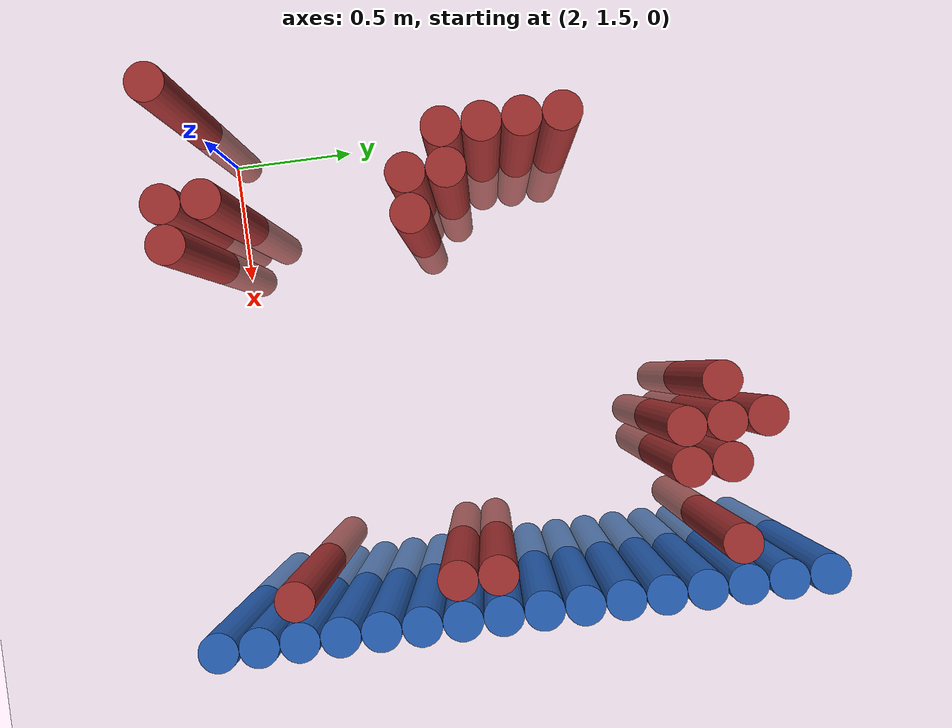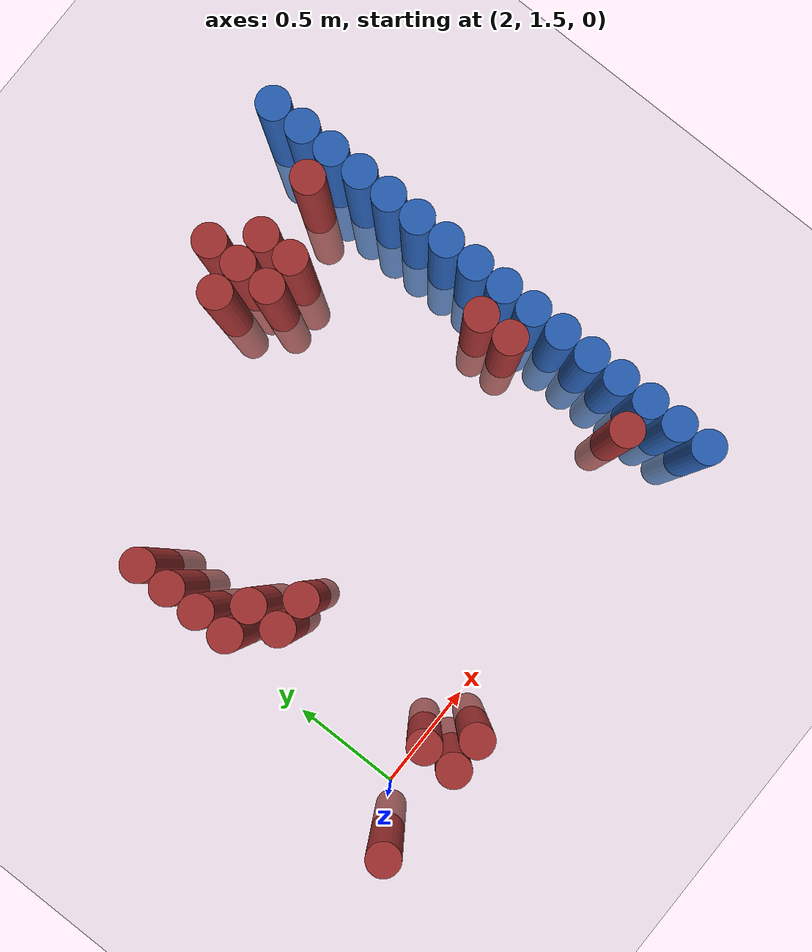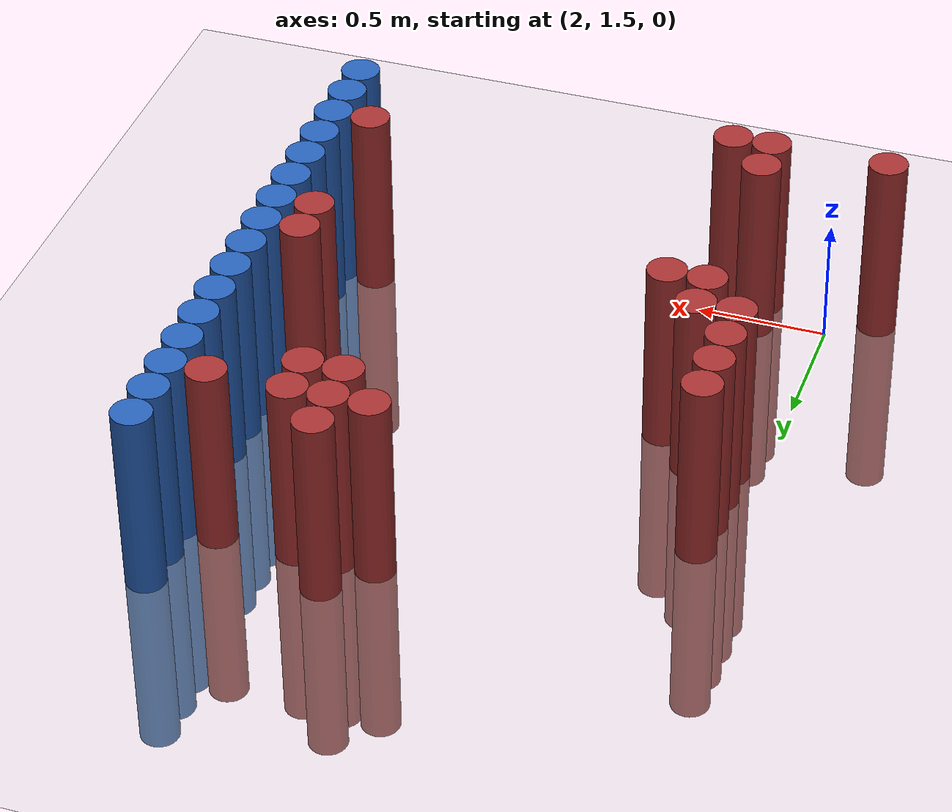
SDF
<sdf version="1.6">
 <world name="default">
  <model name="ground_plane">
   <static>1</static>
   <link name="link">
    <collision name="collision">
     <geometry><plane><normal>0 0 1</normal><size>100 100</size></plane></geometry>
     <surface><friction><ode><mu>100</mu><mu2>50</mu2></ode></friction></surface>
    </collision>
    <visual name="visual">
     <cast_shadows>0</cast_shadows>
     <geometry><plane><normal>0 0 1</normal><size>100 100</size></plane></geometry>
     <material>
      <script><uri>file://media/materials/scripts/gazebo.material</uri><name>Gazebo/Grey</name></script>
     </material>
    </visual>
   </link>
  </model>
  <model name="unit_cylinder_134">
   <static>1</static>
   <pose>3.925000 1.525000 0.000000 0.000000 0.000000 0.000000</pose>
   <link name="link">
    <inertial>
     <mass>1</mass>
     <inertia><ixx>0.145833</ixx><ixy>0</ixy><ixz>0</ixz><iyy>0.145833</iyy><iyz>0</iyz><izz>0.125</izz></inertia>
    </inertial>
    <collision name="collision">
     <geometry><cylinder><radius>0.075000</radius><length>1.5</length></cylinder></geometry>
    </collision>
    <visual name="visual">
     <geometry><cylinder><radius>0.075000</radius><length>1.5</length></cylinder></geometry>
     <material>
      <ambient>0.152000 0.379000 0.720000 1</ambient>
      <diffuse>0.152000 0.379000 0.720000 1</diffuse>
     </material>
     <material>
      <script><name>Gazebo/Grey</name><uri>file://media/materials/scripts/gazebo.material</uri></script>
     </material>
    </visual>
   </link>
  </model>
  <model name="unit_cylinder_136">
   <static>1</static>
   <pose>3.925000 1.675000 0.000000 0.000000 0.000000 0.000000</pose>
   <link name="link">
    <inertial>
     <mass>1</mass>
     <inertia><ixx>0.145833</ixx><ixy>0</ixy><ixz>0</ixz><iyy>0.145833</iyy><iyz>0</iyz><izz>0.125</izz></inertia>
    </inertial>
    <collision name="collision">
     <geometry><cylinder><radius>0.075000</radius><length>1.5</length></cylinder></geometry>
    </collision>
    <visual name="visual">
     <geometry><cylinder><radius>0.075000</radius><length>1.5</length></cylinder></geometry>
     <material>
      <ambient>0.152000 0.379000 0.720000 1</ambient>
      <diffuse>0.152000 0.379000 0.720000 1</diffuse>
     </material>
     <material>
      <script><name>Gazebo/Grey</name><uri>file://media/materials/scripts/gazebo.material</uri></script>
     </material>
    </visual>
   </link>
  </model>
  <model name="unit_cylinder_138">
   <static>1</static>
   <pose>3.925000 1.825000 0.000000 0.000000 0.000000 0.000000</pose>
   <link name="link">
    <inertial>
     <mass>1</mass>
     <inertia><ixx>0.145833</ixx><ixy>0</ixy><ixz>0</ixz><iyy>0.145833</iyy><iyz>0</iyz><izz>0.125</izz></inertia>
    </inertial>
    <collision name="collision">
     <geometry><cylinder><radius>0.075000</radius><length>1.5</length></cylinder></geometry>
    </collision>
    <visual name="visual">
     <geometry><cylinder><radius>0.075000</radius><length>1.5</length></cylinder></geometry>
     <material>
      <ambient>0.152000 0.379000 0.720000 1</ambient>
      <diffuse>0.152000 0.379000 0.720000 1</diffuse>
     </material>
     <material>
      <script><name>Gazebo/Grey</name><uri>file://media/materials/scripts/gazebo.material</uri></script>
     </material>
    </visual>
   </link>
  </model>
  <model name="unit_cylinder_140">
   <static>1</static>
   <pose>3.925000 1.975000 0.000000 0.000000 0.000000 0.000000</pose>
   <link name="link">
    <inertial>
     <mass>1</mass>
     <inertia><ixx>0.145833</ixx><ixy>0</ixy><ixz>0</ixz><iyy>0.145833</iyy><iyz>0</iyz><izz>0.125</izz></inertia>
    </inertial>
    <collision name="collision">
     <geometry><cylinder><radius>0.075000</radius><length>1.5</length></cylinder></geometry>
    </collision>
    <visual name="visual">
     <geometry><cylinder><radius>0.075000</radius><length>1.5</length></cylinder></geometry>
     <material>
      <ambient>0.152000 0.379000 0.720000 1</ambient>
      <diffuse>0.152000 0.379000 0.720000 1</diffuse>
     </material>
     <material>
      <script><name>Gazebo/Grey</name><uri>file://media/materials/scripts/gazebo.material</uri></script>
     </material>
    </visual>
   </link>
  </model>
  <model name="unit_cylinder_142">
   <static>1</static>
   <pose>3.925000 2.125000 0.000000 0.000000 0.000000 0.000000</pose>
   <link name="link">
    <inertial>
     <mass>1</mass>
     <inertia><ixx>0.145833</ixx><ixy>0</ixy><ixz>0</ixz><iyy>0.145833</iyy><iyz>0</iyz><izz>0.125</izz></inertia>
    </inertial>
    <collision name="collision">
     <geometry><cylinder><radius>0.075000</radius><length>1.5</length></cylinder></geometry>
    </collision>
    <visual name="visual">
     <geometry><cylinder><radius>0.075000</radius><length>1.5</length></cylinder></geometry>
     <material>
      <ambient>0.152000 0.379000 0.720000 1</ambient>
      <diffuse>0.152000 0.379000 0.720000 1</diffuse>
     </material>
     <material>
      <script><name>Gazebo/Grey</name><uri>file://media/materials/scripts/gazebo.material</uri></script>
     </material>
    </visual>
   </link>
  </model>
  <model name="unit_cylinder_144">
   <static>1</static>
   <pose>3.925000 2.275000 0.000000 0.000000 0.000000 0.000000</pose>
   <link name="link">
    <inertial>
     <mass>1</mass>
     <inertia><ixx>0.145833</ixx><ixy>0</ixy><ixz>0</ixz><iyy>0.145833</iyy><iyz>0</iyz><izz>0.125</izz></inertia>
    </inertial>
    <collision name="collision">
     <geometry><cylinder><radius>0.075000</radius><length>1.5</length></cylinder></geometry>
    </collision>
    <visual name="visual">
     <geometry><cylinder><radius>0.075000</radius><length>1.5</length></cylinder></geometry>
     <material>
      <ambient>0.152000 0.379000 0.720000 1</ambient>
      <diffuse>0.152000 0.379000 0.720000 1</diffuse>
     </material>
     <material>
      <script><name>Gazebo/Grey</name><uri>file://media/materials/scripts/gazebo.material</uri></script>
     </material>
    </visual>
   </link>
  </model>
  <model name="unit_cylinder_146">
   <static>1</static>
   <pose>3.925000 2.425000 0.000000 0.000000 0.000000 0.000000</pose>
   <link name="link">
    <inertial>
     <mass>1</mass>
     <inertia><ixx>0.145833</ixx><ixy>0</ixy><ixz>0</ixz><iyy>0.145833</iyy><iyz>0</iyz><izz>0.125</izz></inertia>
    </inertial>
    <collision name="collision">
     <geometry><cylinder><radius>0.075000</radius><length>1.5</length></cylinder></geometry>
    </collision>
    <visual name="visual">
     <geometry><cylinder><radius>0.075000</radius><length>1.5</length></cylinder></geometry>
     <material>
      <ambient>0.152000 0.379000 0.720000 1</ambient>
      <diffuse>0.152000 0.379000 0.720000 1</diffuse>
     </material>
     <material>
      <script><name>Gazebo/Grey</name><uri>file://media/materials/scripts/gazebo.material</uri></script>
     </material>
    </visual>
   </link>
  </model>
  <model name="unit_cylinder_148">
   <static>1</static>
   <pose>3.925000 2.575000 0.000000 0.000000 0.000000 0.000000</pose>
   <link name="link">
    <inertial>
     <mass>1</mass>
     <inertia><ixx>0.145833</ixx><ixy>0</ixy><ixz>0</ixz><iyy>0.145833</iyy><iyz>0</iyz><izz>0.125</izz></inertia>
    </inertial>
    <collision name="collision">
     <geometry><cylinder><radius>0.075000</radius><length>1.5</length></cylinder></geometry>
    </collision>
    <visual name="visual">
     <geometry><cylinder><radius>0.075000</radius><length>1.5</length></cylinder></geometry>
     <material>
      <ambient>0.152000 0.379000 0.720000 1</ambient>
      <diffuse>0.152000 0.379000 0.720000 1</diffuse>
     </material>
     <material>
      <script><name>Gazebo/Grey</name><uri>file://media/materials/scripts/gazebo.material</uri></script>
     </material>
    </visual>
   </link>
  </model>
  <model name="unit_cylinder_150">
   <static>1</static>
   <pose>3.925000 2.725000 0.000000 0.000000 0.000000 0.000000</pose>
   <link name="link">
    <inertial>
     <mass>1</mass>
     <inertia><ixx>0.145833</ixx><ixy>0</ixy><ixz>0</ixz><iyy>0.145833</iyy><iyz>0</iyz><izz>0.125</izz></inertia>
    </inertial>
    <collision name="collision">
     <geometry><cylinder><radius>0.075000</radius><length>1.5</length></cylinder></geometry>
    </collision>
    <visual name="visual">
     <geometry><cylinder><radius>0.075000</radius><length>1.5</length></cylinder></geometry>
     <material>
      <ambient>0.152000 0.379000 0.720000 1</ambient>
      <diffuse>0.152000 0.379000 0.720000 1</diffuse>
     </material>
     <material>
      <script><name>Gazebo/Grey</name><uri>file://media/materials/scripts/gazebo.material</uri></script>
     </material>
    </visual>
   </link>
  </model>
  <model name="unit_cylinder_152">
   <static>1</static>
   <pose>3.925000 2.875000 0.000000 0.000000 0.000000 0.000000</pose>
   <link name="link">
    <inertial>
     <mass>1</mass>
     <inertia><ixx>0.145833</ixx><ixy>0</ixy><ixz>0</ixz><iyy>0.145833</iyy><iyz>0</iyz><izz>0.125</izz></inertia>
    </inertial>
    <collision name="collision">
     <geometry><cylinder><radius>0.075000</radius><length>1.5</length></cylinder></geometry>
    </collision>
    <visual name="visual">
     <geometry><cylinder><radius>0.075000</radius><length>1.5</length></cylinder></geometry>
     <material>
      <ambient>0.152000 0.379000 0.720000 1</ambient>
      <diffuse>0.152000 0.379000 0.720000 1</diffuse>
     </material>
     <material>
      <script><name>Gazebo/Grey</name><uri>file://media/materials/scripts/gazebo.material</uri></script>
     </material>
    </visual>
   </link>
  </model>
  <model name="unit_cylinder_154">
   <static>1</static>
   <pose>3.925000 3.025000 0.000000 0.000000 0.000000 0.000000</pose>
   <link name="link">
    <inertial>
     <mass>1</mass>
     <inertia><ixx>0.145833</ixx><ixy>0</ixy><ixz>0</ixz><iyy>0.145833</iyy><iyz>0</iyz><izz>0.125</izz></inertia>
    </inertial>
    <collision name="collision">
     <geometry><cylinder><radius>0.075000</radius><length>1.5</length></cylinder></geometry>
    </collision>
    <visual name="visual">
     <geometry><cylinder><radius>0.075000</radius><length>1.5</length></cylinder></geometry>
     <material>
      <ambient>0.152000 0.379000 0.720000 1</ambient>
      <diffuse>0.152000 0.379000 0.720000 1</diffuse>
     </material>
     <material>
      <script><name>Gazebo/Grey</name><uri>file://media/materials/scripts/gazebo.material</uri></script>
     </material>
    </visual>
   </link>
  </model>
  <model name="unit_cylinder_156">
   <static>1</static>
   <pose>3.925000 3.175000 0.000000 0.000000 0.000000 0.000000</pose>
   <link name="link">
    <inertial>
     <mass>1</mass>
     <inertia><ixx>0.145833</ixx><ixy>0</ixy><ixz>0</ixz><iyy>0.145833</iyy><iyz>0</iyz><izz>0.125</izz></inertia>
    </inertial>
    <collision name="collision">
     <geometry><cylinder><radius>0.075000</radius><length>1.5</length></cylinder></geometry>
    </collision>
    <visual name="visual">
     <geometry><cylinder><radius>0.075000</radius><length>1.5</length></cylinder></geometry>
     <material>
      <ambient>0.152000 0.379000 0.720000 1</ambient>
      <diffuse>0.152000 0.379000 0.720000 1</diffuse>
     </material>
     <material>
      <script><name>Gazebo/Grey</name><uri>file://media/materials/scripts/gazebo.material</uri></script>
     </material>
    </visual>
   </link>
  </model>
  <model name="unit_cylinder_158">
   <static>1</static>
   <pose>3.925000 3.325000 0.000000 0.000000 0.000000 0.000000</pose>
   <link name="link">
    <inertial>
     <mass>1</mass>
     <inertia><ixx>0.145833</ixx><ixy>0</ixy><ixz>0</ixz><iyy>0.145833</iyy><iyz>0</iyz><izz>0.125</izz></inertia>
    </inertial>
    <collision name="collision">
     <geometry><cylinder><radius>0.075000</radius><length>1.5</length></cylinder></geometry>
    </collision>
    <visual name="visual">
     <geometry><cylinder><radius>0.075000</radius><length>1.5</length></cylinder></geometry>
     <material>
      <ambient>0.152000 0.379000 0.720000 1</ambient>
      <diffuse>0.152000 0.379000 0.720000 1</diffuse>
     </material>
     <material>
      <script><name>Gazebo/Grey</name><uri>file://media/materials/scripts/gazebo.material</uri></script>
     </material>
    </visual>
   </link>
  </model>
  <model name="unit_cylinder_160">
   <static>1</static>
   <pose>3.925000 3.475000 0.000000 0.000000 0.000000 0.000000</pose>
   <link name="link">
    <inertial>
     <mass>1</mass>
     <inertia><ixx>0.145833</ixx><ixy>0</ixy><ixz>0</ixz><iyy>0.145833</iyy><iyz>0</iyz><izz>0.125</izz></inertia>
    </inertial>
    <collision name="collision">
     <geometry><cylinder><radius>0.075000</radius><length>1.5</length></cylinder></geometry>
    </collision>
    <visual name="visual">
     <geometry><cylinder><radius>0.075000</radius><length>1.5</length></cylinder></geometry>
     <material>
      <ambient>0.152000 0.379000 0.720000 1</ambient>
      <diffuse>0.152000 0.379000 0.720000 1</diffuse>
     </material>
     <material>
      <script><name>Gazebo/Grey</name><uri>file://media/materials/scripts/gazebo.material</uri></script>
     </material>
    </visual>
   </link>
  </model>
  <model name="unit_cylinder_162">
   <static>1</static>
   <pose>3.925000 3.625000 0.000000 0.000000 0.000000 0.000000</pose>
   <link name="link">
    <inertial>
     <mass>1</mass>
     <inertia><ixx>0.145833</ixx><ixy>0</ixy><ixz>0</ixz><iyy>0.145833</iyy><iyz>0</iyz><izz>0.125</izz></inertia>
    </inertial>
    <collision name="collision">
     <geometry><cylinder><radius>0.075000</radius><length>1.5</length></cylinder></geometry>
    </collision>
    <visual name="visual">
     <geometry><cylinder><radius>0.075000</radius><length>1.5</length></cylinder></geometry>
     <material>
      <ambient>0.152000 0.379000 0.720000 1</ambient>
      <diffuse>0.152000 0.379000 0.720000 1</diffuse>
     </material>
     <material>
      <script><name>Gazebo/Grey</name><uri>file://media/materials/scripts/gazebo.material</uri></script>
     </material>
    </visual>
   </link>
  </model>
  <model name="unit_cylinder_423">
   <static>1</static>
   <pose>1.825000 1.375000 0.000000 0.000000 0.000000 0.000000</pose>
   <link name="link">
    <inertial>
     <mass>1</mass>
     <inertia><ixx>0.145833</ixx><ixy>0</ixy><ixz>0</ixz><iyy>0.145833</iyy><iyz>0</iyz><izz>0.125</izz></inertia>
    </inertial>
    <collision name="collision">
     <geometry><cylinder><radius>0.075000</radius><length>1.5</length></cylinder></geometry>
    </collision>
    <visual name="visual">
     <geometry><cylinder><radius>0.075000</radius><length>1.5</length></cylinder></geometry>
     <material>
      <ambient>0.648000 0.192000 0.192000 1</ambient>
      <diffuse>0.648000 0.192000 0.192000 1</diffuse>
     </material>
     <material>
      <script><name>Gazebo/Grey</name><uri>file://media/materials/scripts/gazebo.material</uri></script>
     </material>
    </visual>
   </link>
  </model>
  <model name="unit_cylinder_427">
   <static>1</static>
   <pose>2.125000 2.425000 0.000000 0.000000 0.000000 0.000000</pose>
   <link name="link">
    <inertial>
     <mass>1</mass>
     <inertia><ixx>0.145833</ixx><ixy>0</ixy><ixz>0</ixz><iyy>0.145833</iyy><iyz>0</iyz><izz>0.125</izz></inertia>
    </inertial>
    <collision name="collision">
     <geometry><cylinder><radius>0.075000</radius><length>1.5</length></cylinder></geometry>
    </collision>
    <visual name="visual">
     <geometry><cylinder><radius>0.075000</radius><length>1.5</length></cylinder></geometry>
     <material>
      <ambient>0.648000 0.192000 0.192000 1</ambient>
      <diffuse>0.648000 0.192000 0.192000 1</diffuse>
     </material>
     <material>
      <script><name>Gazebo/Grey</name><uri>file://media/materials/scripts/gazebo.material</uri></script>
     </material>
    </visual>
   </link>
  </model>
  <model name="unit_cylinder_428">
   <static>1</static>
   <pose>2.125000 2.575000 0.000000 0.000000 0.000000 0.000000</pose>
   <link name="link">
    <inertial>
     <mass>1</mass>
     <inertia><ixx>0.145833</ixx><ixy>0</ixy><ixz>0</ixz><iyy>0.145833</iyy><iyz>0</iyz><izz>0.125</izz></inertia>
    </inertial>
    <collision name="collision">
     <geometry><cylinder><radius>0.075000</radius><length>1.5</length></cylinder></geometry>
    </collision>
    <visual name="visual">
     <geometry><cylinder><radius>0.075000</radius><length>1.5</length></cylinder></geometry>
     <material>
      <ambient>0.648000 0.192000 0.192000 1</ambient>
      <diffuse>0.648000 0.192000 0.192000 1</diffuse>
     </material>
     <material>
      <script><name>Gazebo/Grey</name><uri>file://media/materials/scripts/gazebo.material</uri></script>
     </material>
    </visual>
   </link>
  </model>
  <model name="unit_cylinder_429">
   <static>1</static>
   <pose>2.125000 2.725000 0.000000 0.000000 0.000000 0.000000</pose>
   <link name="link">
    <inertial>
     <mass>1</mass>
     <inertia><ixx>0.145833</ixx><ixy>0</ixy><ixz>0</ixz><iyy>0.145833</iyy><iyz>0</iyz><izz>0.125</izz></inertia>
    </inertial>
    <collision name="collision">
     <geometry><cylinder><radius>0.075000</radius><length>1.5</length></cylinder></geometry>
    </collision>
    <visual name="visual">
     <geometry><cylinder><radius>0.075000</radius><length>1.5</length></cylinder></geometry>
     <material>
      <ambient>0.648000 0.192000 0.192000 1</ambient>
      <diffuse>0.648000 0.192000 0.192000 1</diffuse>
     </material>
     <material>
      <script><name>Gazebo/Grey</name><uri>file://media/materials/scripts/gazebo.material</uri></script>
     </material>
    </visual>
   </link>
  </model>
  <model name="unit_cylinder_430">
   <static>1</static>
   <pose>2.125000 2.875000 0.000000 0.000000 0.000000 0.000000</pose>
   <link name="link">
    <inertial>
     <mass>1</mass>
     <inertia><ixx>0.145833</ixx><ixy>0</ixy><ixz>0</ixz><iyy>0.145833</iyy><iyz>0</iyz><izz>0.125</izz></inertia>
    </inertial>
    <collision name="collision">
     <geometry><cylinder><radius>0.075000</radius><length>1.5</length></cylinder></geometry>
    </collision>
    <visual name="visual">
     <geometry><cylinder><radius>0.075000</radius><length>1.5</length></cylinder></geometry>
     <material>
      <ambient>0.648000 0.192000 0.192000 1</ambient>
      <diffuse>0.648000 0.192000 0.192000 1</diffuse>
     </material>
     <material>
      <script><name>Gazebo/Grey</name><uri>file://media/materials/scripts/gazebo.material</uri></script>
     </material>
    </visual>
   </link>
  </model>
  <model name="unit_cylinder_432">
   <static>1</static>
   <pose>2.275000 1.375000 0.000000 0.000000 0.000000 0.000000</pose>
   <link name="link">
    <inertial>
     <mass>1</mass>
     <inertia><ixx>0.145833</ixx><ixy>0</ixy><ixz>0</ixz><iyy>0.145833</iyy><iyz>0</iyz><izz>0.125</izz></inertia>
    </inertial>
    <collision name="collision">
     <geometry><cylinder><radius>0.075000</radius><length>1.5</length></cylinder></geometry>
    </collision>
    <visual name="visual">
     <geometry><cylinder><radius>0.075000</radius><length>1.5</length></cylinder></geometry>
     <material>
      <ambient>0.648000 0.192000 0.192000 1</ambient>
      <diffuse>0.648000 0.192000 0.192000 1</diffuse>
     </material>
     <material>
      <script><name>Gazebo/Grey</name><uri>file://media/materials/scripts/gazebo.material</uri></script>
     </material>
    </visual>
   </link>
  </model>
  <model name="unit_cylinder_433">
   <static>1</static>
   <pose>2.275000 1.525000 0.000000 0.000000 0.000000 0.000000</pose>
   <link name="link">
    <inertial>
     <mass>1</mass>
     <inertia><ixx>0.145833</ixx><ixy>0</ixy><ixz>0</ixz><iyy>0.145833</iyy><iyz>0</iyz><izz>0.125</izz></inertia>
    </inertial>
    <collision name="collision">
     <geometry><cylinder><radius>0.075000</radius><length>1.5</length></cylinder></geometry>
    </collision>
    <visual name="visual">
     <geometry><cylinder><radius>0.075000</radius><length>1.5</length></cylinder></geometry>
     <material>
      <ambient>0.648000 0.192000 0.192000 1</ambient>
      <diffuse>0.648000 0.192000 0.192000 1</diffuse>
     </material>
     <material>
      <script><name>Gazebo/Grey</name><uri>file://media/materials/scripts/gazebo.material</uri></script>
     </material>
    </visual>
   </link>
  </model>
  <model name="unit_cylinder_434">
   <static>1</static>
   <pose>2.275000 2.275000 0.000000 0.000000 0.000000 0.000000</pose>
   <link name="link">
    <inertial>
     <mass>1</mass>
     <inertia><ixx>0.145833</ixx><ixy>0</ixy><ixz>0</ixz><iyy>0.145833</iyy><iyz>0</iyz><izz>0.125</izz></inertia>
    </inertial>
    <collision name="collision">
     <geometry><cylinder><radius>0.075000</radius><length>1.5</length></cylinder></geometry>
    </collision>
    <visual name="visual">
     <geometry><cylinder><radius>0.075000</radius><length>1.5</length></cylinder></geometry>
     <material>
      <ambient>0.648000 0.192000 0.192000 1</ambient>
      <diffuse>0.648000 0.192000 0.192000 1</diffuse>
     </material>
     <material>
      <script><name>Gazebo/Grey</name><uri>file://media/materials/scripts/gazebo.material</uri></script>
     </material>
    </visual>
   </link>
  </model>
  <model name="unit_cylinder_435">
   <static>1</static>
   <pose>2.275000 2.425000 0.000000 0.000000 0.000000 0.000000</pose>
   <link name="link">
    <inertial>
     <mass>1</mass>
     <inertia><ixx>0.145833</ixx><ixy>0</ixy><ixz>0</ixz><iyy>0.145833</iyy><iyz>0</iyz><izz>0.125</izz></inertia>
    </inertial>
    <collision name="collision">
     <geometry><cylinder><radius>0.075000</radius><length>1.5</length></cylinder></geometry>
    </collision>
    <visual name="visual">
     <geometry><cylinder><radius>0.075000</radius><length>1.5</length></cylinder></geometry>
     <material>
      <ambient>0.648000 0.192000 0.192000 1</ambient>
      <diffuse>0.648000 0.192000 0.192000 1</diffuse>
     </material>
     <material>
      <script><name>Gazebo/Grey</name><uri>file://media/materials/scripts/gazebo.material</uri></script>
     </material>
    </visual>
   </link>
  </model>
  <model name="unit_cylinder_438">
   <static>1</static>
   <pose>2.425000 1.375000 0.000000 0.000000 0.000000 0.000000</pose>
   <link name="link">
    <inertial>
     <mass>1</mass>
     <inertia><ixx>0.145833</ixx><ixy>0</ixy><ixz>0</ixz><iyy>0.145833</iyy><iyz>0</iyz><izz>0.125</izz></inertia>
    </inertial>
    <collision name="collision">
     <geometry><cylinder><radius>0.075000</radius><length>1.5</length></cylinder></geometry>
    </collision>
    <visual name="visual">
     <geometry><cylinder><radius>0.075000</radius><length>1.5</length></cylinder></geometry>
     <material>
      <ambient>0.648000 0.192000 0.192000 1</ambient>
      <diffuse>0.648000 0.192000 0.192000 1</diffuse>
     </material>
     <material>
      <script><name>Gazebo/Grey</name><uri>file://media/materials/scripts/gazebo.material</uri></script>
     </material>
    </visual>
   </link>
  </model>
  <model name="unit_cylinder_439">
   <static>1</static>
   <pose>2.425000 2.275000 0.000000 0.000000 0.000000 0.000000</pose>
   <link name="link">
    <inertial>
     <mass>1</mass>
     <inertia><ixx>0.145833</ixx><ixy>0</ixy><ixz>0</ixz><iyy>0.145833</iyy><iyz>0</iyz><izz>0.125</izz></inertia>
    </inertial>
    <collision name="collision">
     <geometry><cylinder><radius>0.075000</radius><length>1.5</length></cylinder></geometry>
    </collision>
    <visual name="visual">
     <geometry><cylinder><radius>0.075000</radius><length>1.5</length></cylinder></geometry>
     <material>
      <ambient>0.648000 0.192000 0.192000 1</ambient>
      <diffuse>0.648000 0.192000 0.192000 1</diffuse>
     </material>
     <material>
      <script><name>Gazebo/Grey</name><uri>file://media/materials/scripts/gazebo.material</uri></script>
     </material>
    </visual>
   </link>
  </model>
  <model name="unit_cylinder_445">
   <static>1</static>
   <pose>3.175000 3.325000 0.000000 0.000000 0.000000 0.000000</pose>
   <link name="link">
    <inertial>
     <mass>1</mass>
     <inertia><ixx>0.145833</ixx><ixy>0</ixy><ixz>0</ixz><iyy>0.145833</iyy><iyz>0</iyz><izz>0.125</izz></inertia>
    </inertial>
    <collision name="collision">
     <geometry><cylinder><radius>0.075000</radius><length>1.5</length></cylinder></geometry>
    </collision>
    <visual name="visual">
     <geometry><cylinder><radius>0.075000</radius><length>1.5</length></cylinder></geometry>
     <material>
      <ambient>0.648000 0.192000 0.192000 1</ambient>
      <diffuse>0.648000 0.192000 0.192000 1</diffuse>
     </material>
     <material>
      <script><name>Gazebo/Grey</name><uri>file://media/materials/scripts/gazebo.material</uri></script>
     </material>
    </visual>
   </link>
  </model>
  <model name="unit_cylinder_449">
   <static>1</static>
   <pose>3.325000 3.175000 0.000000 0.000000 0.000000 0.000000</pose>
   <link name="link">
    <inertial>
     <mass>1</mass>
     <inertia><ixx>0.145833</ixx><ixy>0</ixy><ixz>0</ixz><iyy>0.145833</iyy><iyz>0</iyz><izz>0.125</izz></inertia>
    </inertial>
    <collision name="collision">
     <geometry><cylinder><radius>0.075000</radius><length>1.5</length></cylinder></geometry>
    </collision>
    <visual name="visual">
     <geometry><cylinder><radius>0.075000</radius><length>1.5</length></cylinder></geometry>
     <material>
      <ambient>0.648000 0.192000 0.192000 1</ambient>
      <diffuse>0.648000 0.192000 0.192000 1</diffuse>
     </material>
     <material>
      <script><name>Gazebo/Grey</name><uri>file://media/materials/scripts/gazebo.material</uri></script>
     </material>
    </visual>
   </link>
  </model>
  <model name="unit_cylinder_450">
   <static>1</static>
   <pose>3.325000 3.325000 0.000000 0.000000 0.000000 0.000000</pose>
   <link name="link">
    <inertial>
     <mass>1</mass>
     <inertia><ixx>0.145833</ixx><ixy>0</ixy><ixz>0</ixz><iyy>0.145833</iyy><iyz>0</iyz><izz>0.125</izz></inertia>
    </inertial>
    <collision name="collision">
     <geometry><cylinder><radius>0.075000</radius><length>1.5</length></cylinder></geometry>
    </collision>
    <visual name="visual">
     <geometry><cylinder><radius>0.075000</radius><length>1.5</length></cylinder></geometry>
     <material>
      <ambient>0.648000 0.192000 0.192000 1</ambient>
      <diffuse>0.648000 0.192000 0.192000 1</diffuse>
     </material>
     <material>
      <script><name>Gazebo/Grey</name><uri>file://media/materials/scripts/gazebo.material</uri></script>
     </material>
    </visual>
   </link>
  </model>
  <model name="unit_cylinder_451">
   <static>1</static>
   <pose>3.325000 3.475000 0.000000 0.000000 0.000000 0.000000</pose>
   <link name="link">
    <inertial>
     <mass>1</mass>
     <inertia><ixx>0.145833</ixx><ixy>0</ixy><ixz>0</ixz><iyy>0.145833</iyy><iyz>0</iyz><izz>0.125</izz></inertia>
    </inertial>
    <collision name="collision">
     <geometry><cylinder><radius>0.075000</radius><length>1.5</length></cylinder></geometry>
    </collision>
    <visual name="visual">
     <geometry><cylinder><radius>0.075000</radius><length>1.5</length></cylinder></geometry>
     <material>
      <ambient>0.648000 0.192000 0.192000 1</ambient>
      <diffuse>0.648000 0.192000 0.192000 1</diffuse>
     </material>
     <material>
      <script><name>Gazebo/Grey</name><uri>file://media/materials/scripts/gazebo.material</uri></script>
     </material>
    </visual>
   </link>
  </model>
  <model name="unit_cylinder_453">
   <static>1</static>
   <pose>3.475000 3.175000 0.000000 0.000000 0.000000 0.000000</pose>
   <link name="link">
    <inertial>
     <mass>1</mass>
     <inertia><ixx>0.145833</ixx><ixy>0</ixy><ixz>0</ixz><iyy>0.145833</iyy><iyz>0</iyz><izz>0.125</izz></inertia>
    </inertial>
    <collision name="collision">
     <geometry><cylinder><radius>0.075000</radius><length>1.5</length></cylinder></geometry>
    </collision>
    <visual name="visual">
     <geometry><cylinder><radius>0.075000</radius><length>1.5</length></cylinder></geometry>
     <material>
      <ambient>0.648000 0.192000 0.192000 1</ambient>
      <diffuse>0.648000 0.192000 0.192000 1</diffuse>
     </material>
     <material>
      <script><name>Gazebo/Grey</name><uri>file://media/materials/scripts/gazebo.material</uri></script>
     </material>
    </visual>
   </link>
  </model>
  <model name="unit_cylinder_454">
   <static>1</static>
   <pose>3.475000 3.325000 0.000000 0.000000 0.000000 0.000000</pose>
   <link name="link">
    <inertial>
     <mass>1</mass>
     <inertia><ixx>0.145833</ixx><ixy>0</ixy><ixz>0</ixz><iyy>0.145833</iyy><iyz>0</iyz><izz>0.125</izz></inertia>
    </inertial>
    <collision name="collision">
     <geometry><cylinder><radius>0.075000</radius><length>1.5</length></cylinder></geometry>
    </collision>
    <visual name="visual">
     <geometry><cylinder><radius>0.075000</radius><length>1.5</length></cylinder></geometry>
     <material>
      <ambient>0.648000 0.192000 0.192000 1</ambient>
      <diffuse>0.648000 0.192000 0.192000 1</diffuse>
     </material>
     <material>
      <script><name>Gazebo/Grey</name><uri>file://media/materials/scripts/gazebo.material</uri></script>
     </material>
    </visual>
   </link>
  </model>
  <model name="unit_cylinder_465">
   <static>1</static>
   <pose>3.775000 1.675000 0.000000 0.000000 0.000000 0.000000</pose>
   <link name="link">
    <inertial>
     <mass>1</mass>
     <inertia><ixx>0.145833</ixx><ixy>0</ixy><ixz>0</ixz><iyy>0.145833</iyy><iyz>0</iyz><izz>0.125</izz></inertia>
    </inertial>
    <collision name="collision">
     <geometry><cylinder><radius>0.075000</radius><length>1.5</length></cylinder></geometry>
    </collision>
    <visual name="visual">
     <geometry><cylinder><radius>0.075000</radius><length>1.5</length></cylinder></geometry>
     <material>
      <ambient>0.648000 0.192000 0.192000 1</ambient>
      <diffuse>0.648000 0.192000 0.192000 1</diffuse>
     </material>
     <material>
      <script><name>Gazebo/Grey</name><uri>file://media/materials/scripts/gazebo.material</uri></script>
     </material>
    </visual>
   </link>
  </model>
  <model name="unit_cylinder_466">
   <static>1</static>
   <pose>3.775000 2.275000 0.000000 0.000000 0.000000 0.000000</pose>
   <link name="link">
    <inertial>
     <mass>1</mass>
     <inertia><ixx>0.145833</ixx><ixy>0</ixy><ixz>0</ixz><iyy>0.145833</iyy><iyz>0</iyz><izz>0.125</izz></inertia>
    </inertial>
    <collision name="collision">
     <geometry><cylinder><radius>0.075000</radius><length>1.5</length></cylinder></geometry>
    </collision>
    <visual name="visual">
     <geometry><cylinder><radius>0.075000</radius><length>1.5</length></cylinder></geometry>
     <material>
      <ambient>0.648000 0.192000 0.192000 1</ambient>
      <diffuse>0.648000 0.192000 0.192000 1</diffuse>
     </material>
     <material>
      <script><name>Gazebo/Grey</name><uri>file://media/materials/scripts/gazebo.material</uri></script>
     </material>
    </visual>
   </link>
  </model>
  <model name="unit_cylinder_467">
   <static>1</static>
   <pose>3.775000 2.425000 0.000000 0.000000 0.000000 0.000000</pose>
   <link name="link">
    <inertial>
     <mass>1</mass>
     <inertia><ixx>0.145833</ixx><ixy>0</ixy><ixz>0</ixz><iyy>0.145833</iyy><iyz>0</iyz><izz>0.125</izz></inertia>
    </inertial>
    <collision name="collision">
     <geometry><cylinder><radius>0.075000</radius><length>1.5</length></cylinder></geometry>
    </collision>
    <visual name="visual">
     <geometry><cylinder><radius>0.075000</radius><length>1.5</length></cylinder></geometry>
     <material>
      <ambient>0.648000 0.192000 0.192000 1</ambient>
      <diffuse>0.648000 0.192000 0.192000 1</diffuse>
     </material>
     <material>
      <script><name>Gazebo/Grey</name><uri>file://media/materials/scripts/gazebo.material</uri></script>
     </material>
    </visual>
   </link>
  </model>
  <model name="unit_cylinder_468">
   <static>1</static>
   <pose>3.775000 3.325000 0.000000 0.000000 0.000000 0.000000</pose>
   <link name="link">
    <inertial>
     <mass>1</mass>
     <inertia><ixx>0.145833</ixx><ixy>0</ixy><ixz>0</ixz><iyy>0.145833</iyy><iyz>0</iyz><izz>0.125</izz></inertia>
    </inertial>
    <collision name="collision">
     <geometry><cylinder><radius>0.075000</radius><length>1.5</length></cylinder></geometry>
    </collision>
    <visual name="visual">
     <geometry><cylinder><radius>0.075000</radius><length>1.5</length></cylinder></geometry>
     <material>
      <ambient>0.648000 0.192000 0.192000 1</ambient>
      <diffuse>0.648000 0.192000 0.192000 1</diffuse>
     </material>
     <material>
      <script><name>Gazebo/Grey</name><uri>file://media/materials/scripts/gazebo.material</uri></script>
     </material>
    </visual>
   </link>
  </model>
  <model name="unit_cylinder_498">
   <static>1</static>
   <pose>3.925000 1.375000 0.000000 0.000000 0.000000 0.000000</pose>
   <link name="link">
    <inertial>
     <mass>1</mass>
     <inertia><ixx>0.145833</ixx><ixy>0</ixy><ixz>0</ixz><iyy>0.145833</iyy><iyz>0</iyz><izz>0.125</izz></inertia>
    </inertial>
    <collision name="collision">
     <geometry><cylinder><radius>0.075000</radius><length>1.5</length></cylinder></geometry>
    </collision>
    <visual name="visual">
     <geometry><cylinder><radius>0.075000</radius><length>1.5</length></cylinder></geometry>
     <material>
      <ambient>0.152000 0.379000 0.720000 1</ambient>
      <diffuse>0.152000 0.379000 0.720000 1</diffuse>
     </material>
     <material>
      <script><name>Gazebo/Grey</name><uri>file://media/materials/scripts/gazebo.material</uri></script>
     </material>
    </visual>
   </link>
  </model>
  <model name="unit_cylinder_499">
   <static>1</static>
   <pose>3.925000 1.525000 0.000000 0.000000 0.000000 0.000000</pose>
   <link name="link">
    <inertial>
     <mass>1</mass>
     <inertia><ixx>0.145833</ixx><ixy>0</ixy><ixz>0</ixz><iyy>0.145833</iyy><iyz>0</iyz><izz>0.125</izz></inertia>
    </inertial>
    <collision name="collision">
     <geometry><cylinder><radius>0.075000</radius><length>1.5</length></cylinder></geometry>
    </collision>
    <visual name="visual">
     <geometry><cylinder><radius>0.075000</radius><length>1.5</length></cylinder></geometry>
     <material>
      <ambient>0.152000 0.379000 0.720000 1</ambient>
      <diffuse>0.152000 0.379000 0.720000 1</diffuse>
     </material>
     <material>
      <script><name>Gazebo/Grey</name><uri>file://media/materials/scripts/gazebo.material</uri></script>
     </material>
    </visual>
   </link>
  </model>
  <model name="unit_cylinder_500">
   <static>1</static>
   <pose>3.925000 1.675000 0.000000 0.000000 0.000000 0.000000</pose>
   <link name="link">
    <inertial>
     <mass>1</mass>
     <inertia><ixx>0.145833</ixx><ixy>0</ixy><ixz>0</ixz><iyy>0.145833</iyy><iyz>0</iyz><izz>0.125</izz></inertia>
    </inertial>
    <collision name="collision">
     <geometry><cylinder><radius>0.075000</radius><length>1.5</length></cylinder></geometry>
    </collision>
    <visual name="visual">
     <geometry><cylinder><radius>0.075000</radius><length>1.5</length></cylinder></geometry>
     <material>
      <ambient>0.152000 0.379000 0.720000 1</ambient>
      <diffuse>0.152000 0.379000 0.720000 1</diffuse>
     </material>
     <material>
      <script><name>Gazebo/Grey</name><uri>file://media/materials/scripts/gazebo.material</uri></script>
     </material>
    </visual>
   </link>
  </model>
  <model name="unit_cylinder_501">
   <static>1</static>
   <pose>3.925000 1.825000 0.000000 0.000000 0.000000 0.000000</pose>
   <link name="link">
    <inertial>
     <mass>1</mass>
     <inertia><ixx>0.145833</ixx><ixy>0</ixy><ixz>0</ixz><iyy>0.145833</iyy><iyz>0</iyz><izz>0.125</izz></inertia>
    </inertial>
    <collision name="collision">
     <geometry><cylinder><radius>0.075000</radius><length>1.5</length></cylinder></geometry>
    </collision>
    <visual name="visual">
     <geometry><cylinder><radius>0.075000</radius><length>1.5</length></cylinder></geometry>
     <material>
      <ambient>0.152000 0.379000 0.720000 1</ambient>
      <diffuse>0.152000 0.379000 0.720000 1</diffuse>
     </material>
     <material>
      <script><name>Gazebo/Grey</name><uri>file://media/materials/scripts/gazebo.material</uri></script>
     </material>
    </visual>
   </link>
  </model>
  <model name="unit_cylinder_502">
   <static>1</static>
   <pose>3.925000 1.975000 0.000000 0.000000 0.000000 0.000000</pose>
   <link name="link">
    <inertial>
     <mass>1</mass>
     <inertia><ixx>0.145833</ixx><ixy>0</ixy><ixz>0</ixz><iyy>0.145833</iyy><iyz>0</iyz><izz>0.125</izz></inertia>
    </inertial>
    <collision name="collision">
     <geometry><cylinder><radius>0.075000</radius><length>1.5</length></cylinder></geometry>
    </collision>
    <visual name="visual">
     <geometry><cylinder><radius>0.075000</radius><length>1.5</length></cylinder></geometry>
     <material>
      <ambient>0.152000 0.379000 0.720000 1</ambient>
      <diffuse>0.152000 0.379000 0.720000 1</diffuse>
     </material>
     <material>
      <script><name>Gazebo/Grey</name><uri>file://media/materials/scripts/gazebo.material</uri></script>
     </material>
    </visual>
   </link>
  </model>
  <model name="unit_cylinder_503">
   <static>1</static>
   <pose>3.925000 2.125000 0.000000 0.000000 0.000000 0.000000</pose>
   <link name="link">
    <inertial>
     <mass>1</mass>
     <inertia><ixx>0.145833</ixx><ixy>0</ixy><ixz>0</ixz><iyy>0.145833</iyy><iyz>0</iyz><izz>0.125</izz></inertia>
    </inertial>
    <collision name="collision">
     <geometry><cylinder><radius>0.075000</radius><length>1.5</length></cylinder></geometry>
    </collision>
    <visual name="visual">
     <geometry><cylinder><radius>0.075000</radius><length>1.5</length></cylinder></geometry>
     <material>
      <ambient>0.152000 0.379000 0.720000 1</ambient>
      <diffuse>0.152000 0.379000 0.720000 1</diffuse>
     </material>
     <material>
      <script><name>Gazebo/Grey</name><uri>file://media/materials/scripts/gazebo.material</uri></script>
     </material>
    </visual>
   </link>
  </model>
  <model name="unit_cylinder_504">
   <static>1</static>
   <pose>3.925000 2.275000 0.000000 0.000000 0.000000 0.000000</pose>
   <link name="link">
    <inertial>
     <mass>1</mass>
     <inertia><ixx>0.145833</ixx><ixy>0</ixy><ixz>0</ixz><iyy>0.145833</iyy><iyz>0</iyz><izz>0.125</izz></inertia>
    </inertial>
    <collision name="collision">
     <geometry><cylinder><radius>0.075000</radius><length>1.5</length></cylinder></geometry>
    </collision>
    <visual name="visual">
     <geometry><cylinder><radius>0.075000</radius><length>1.5</length></cylinder></geometry>
     <material>
      <ambient>0.152000 0.379000 0.720000 1</ambient>
      <diffuse>0.152000 0.379000 0.720000 1</diffuse>
     </material>
     <material>
      <script><name>Gazebo/Grey</name><uri>file://media/materials/scripts/gazebo.material</uri></script>
     </material>
    </visual>
   </link>
  </model>
  <model name="unit_cylinder_505">
   <static>1</static>
   <pose>3.925000 2.425000 0.000000 0.000000 0.000000 0.000000</pose>
   <link name="link">
    <inertial>
     <mass>1</mass>
     <inertia><ixx>0.145833</ixx><ixy>0</ixy><ixz>0</ixz><iyy>0.145833</iyy><iyz>0</iyz><izz>0.125</izz></inertia>
    </inertial>
    <collision name="collision">
     <geometry><cylinder><radius>0.075000</radius><length>1.5</length></cylinder></geometry>
    </collision>
    <visual name="visual">
     <geometry><cylinder><radius>0.075000</radius><length>1.5</length></cylinder></geometry>
     <material>
      <ambient>0.152000 0.379000 0.720000 1</ambient>
      <diffuse>0.152000 0.379000 0.720000 1</diffuse>
     </material>
     <material>
      <script><name>Gazebo/Grey</name><uri>file://media/materials/scripts/gazebo.material</uri></script>
     </material>
    </visual>
   </link>
  </model>
  <model name="unit_cylinder_506">
   <static>1</static>
   <pose>3.925000 2.575000 0.000000 0.000000 0.000000 0.000000</pose>
   <link name="link">
    <inertial>
     <mass>1</mass>
     <inertia><ixx>0.145833</ixx><ixy>0</ixy><ixz>0</ixz><iyy>0.145833</iyy><iyz>0</iyz><izz>0.125</izz></inertia>
    </inertial>
    <collision name="collision">
     <geometry><cylinder><radius>0.075000</radius><length>1.5</length></cylinder></geometry>
    </collision>
    <visual name="visual">
     <geometry><cylinder><radius>0.075000</radius><length>1.5</length></cylinder></geometry>
     <material>
      <ambient>0.152000 0.379000 0.720000 1</ambient>
      <diffuse>0.152000 0.379000 0.720000 1</diffuse>
     </material>
     <material>
      <script><name>Gazebo/Grey</name><uri>file://media/materials/scripts/gazebo.material</uri></script>
     </material>
    </visual>
   </link>
  </model>
  <model name="unit_cylinder_507">
   <static>1</static>
   <pose>3.925000 2.725000 0.000000 0.000000 0.000000 0.000000</pose>
   <link name="link">
    <inertial>
     <mass>1</mass>
     <inertia><ixx>0.145833</ixx><ixy>0</ixy><ixz>0</ixz><iyy>0.145833</iyy><iyz>0</iyz><izz>0.125</izz></inertia>
    </inertial>
    <collision name="collision">
     <geometry><cylinder><radius>0.075000</radius><length>1.5</length></cylinder></geometry>
    </collision>
    <visual name="visual">
     <geometry><cylinder><radius>0.075000</radius><length>1.5</length></cylinder></geometry>
     <material>
      <ambient>0.152000 0.379000 0.720000 1</ambient>
      <diffuse>0.152000 0.379000 0.720000 1</diffuse>
     </material>
     <material>
      <script><name>Gazebo/Grey</name><uri>file://media/materials/scripts/gazebo.material</uri></script>
     </material>
    </visual>
   </link>
  </model>
  <model name="unit_cylinder_508">
   <static>1</static>
   <pose>3.925000 2.875000 0.000000 0.000000 0.000000 0.000000</pose>
   <link name="link">
    <inertial>
     <mass>1</mass>
     <inertia><ixx>0.145833</ixx><ixy>0</ixy><ixz>0</ixz><iyy>0.145833</iyy><iyz>0</iyz><izz>0.125</izz></inertia>
    </inertial>
    <collision name="collision">
     <geometry><cylinder><radius>0.075000</radius><length>1.5</length></cylinder></geometry>
    </collision>
    <visual name="visual">
     <geometry><cylinder><radius>0.075000</radius><length>1.5</length></cylinder></geometry>
     <material>
      <ambient>0.152000 0.379000 0.720000 1</ambient>
      <diffuse>0.152000 0.379000 0.720000 1</diffuse>
     </material>
     <material>
      <script><name>Gazebo/Grey</name><uri>file://media/materials/scripts/gazebo.material</uri></script>
     </material>
    </visual>
   </link>
  </model>
  <model name="unit_cylinder_509">
   <static>1</static>
   <pose>3.925000 3.025000 0.000000 0.000000 0.000000 0.000000</pose>
   <link name="link">
    <inertial>
     <mass>1</mass>
     <inertia><ixx>0.145833</ixx><ixy>0</ixy><ixz>0</ixz><iyy>0.145833</iyy><iyz>0</iyz><izz>0.125</izz></inertia>
    </inertial>
    <collision name="collision">
     <geometry><cylinder><radius>0.075000</radius><length>1.5</length></cylinder></geometry>
    </collision>
    <visual name="visual">
     <geometry><cylinder><radius>0.075000</radius><length>1.5</length></cylinder></geometry>
     <material>
      <ambient>0.152000 0.379000 0.720000 1</ambient>
      <diffuse>0.152000 0.379000 0.720000 1</diffuse>
     </material>
     <material>
      <script><name>Gazebo/Grey</name><uri>file://media/materials/scripts/gazebo.material</uri></script>
     </material>
    </visual>
   </link>
  </model>
  <model name="unit_cylinder_510">
   <static>1</static>
   <pose>3.925000 3.175000 0.000000 0.000000 0.000000 0.000000</pose>
   <link name="link">
    <inertial>
     <mass>1</mass>
     <inertia><ixx>0.145833</ixx><ixy>0</ixy><ixz>0</ixz><iyy>0.145833</iyy><iyz>0</iyz><izz>0.125</izz></inertia>
    </inertial>
    <collision name="collision">
     <geometry><cylinder><radius>0.075000</radius><length>1.5</length></cylinder></geometry>
    </collision>
    <visual name="visual">
     <geometry><cylinder><radius>0.075000</radius><length>1.5</length></cylinder></geometry>
     <material>
      <ambient>0.152000 0.379000 0.720000 1</ambient>
      <diffuse>0.152000 0.379000 0.720000 1</diffuse>
     </material>
     <material>
      <script><name>Gazebo/Grey</name><uri>file://media/materials/scripts/gazebo.material</uri></script>
     </material>
    </visual>
   </link>
  </model>
  <model name="unit_cylinder_511">
   <static>1</static>
   <pose>3.925000 3.325000 0.000000 0.000000 0.000000 0.000000</pose>
   <link name="link">
    <inertial>
     <mass>1</mass>
     <inertia><ixx>0.145833</ixx><ixy>0</ixy><ixz>0</ixz><iyy>0.145833</iyy><iyz>0</iyz><izz>0.125</izz></inertia>
    </inertial>
    <collision name="collision">
     <geometry><cylinder><radius>0.075000</radius><length>1.5</length></cylinder></geometry>
    </collision>
    <visual name="visual">
     <geometry><cylinder><radius>0.075000</radius><length>1.5</length></cylinder></geometry>
     <material>
      <ambient>0.152000 0.379000 0.720000 1</ambient>
      <diffuse>0.152000 0.379000 0.720000 1</diffuse>
     </material>
     <material>
      <script><name>Gazebo/Grey</name><uri>file://media/materials/scripts/gazebo.material</uri></script>
     </material>
    </visual>
   </link>
  </model>
  <model name="unit_cylinder_512">
   <static>1</static>
   <pose>3.925000 3.475000 0.000000 0.000000 0.000000 0.000000</pose>
   <link name="link">
    <inertial>
     <mass>1</mass>
     <inertia><ixx>0.145833</ixx><ixy>0</ixy><ixz>0</ixz><iyy>0.145833</iyy><iyz>0</iyz><izz>0.125</izz></inertia>
    </inertial>
    <collision name="collision">
     <geometry><cylinder><radius>0.075000</radius><length>1.5</length></cylinder></geometry>
    </collision>
    <visual name="visual">
     <geometry><cylinder><radius>0.075000</radius><length>1.5</length></cylinder></geometry>
     <material>
      <ambient>0.152000 0.379000 0.720000 1</ambient>
      <diffuse>0.152000 0.379000 0.720000 1</diffuse>
     </material>
     <material>
      <script><name>Gazebo/Grey</name><uri>file://media/materials/scripts/gazebo.material</uri></script>
     </material>
    </visual>
   </link>
  </model>
  <model name="unit_cylinder_513">
   <static>1</static>
   <pose>3.925000 3.625000 0.000000 0.000000 0.000000 0.000000</pose>
   <link name="link">
    <inertial>
     <mass>1</mass>
     <inertia><ixx>0.145833</ixx><ixy>0</ixy><ixz>0</ixz><iyy>0.145833</iyy><iyz>0</iyz><izz>0.125</izz></inertia>
    </inertial>
    <collision name="collision">
     <geometry><cylinder><radius>0.075000</radius><length>1.5</length></cylinder></geometry>
    </collision>
    <visual name="visual">
     <geometry><cylinder><radius>0.075000</radius><length>1.5</length></cylinder></geometry>
     <material>
      <ambient>0.152000 0.379000 0.720000 1</ambient>
      <diffuse>0.152000 0.379000 0.720000 1</diffuse>
     </material>
     <material>
      <script><name>Gazebo/Grey</name><uri>file://media/materials/scripts/gazebo.material</uri></script>
     </material>
    </visual>
   </link>
  </model>
 </world>
</sdf>
